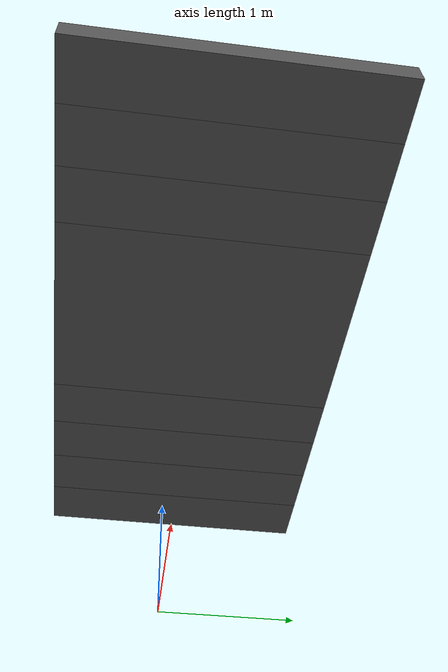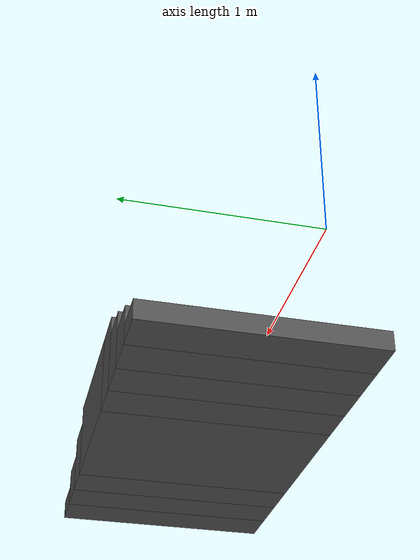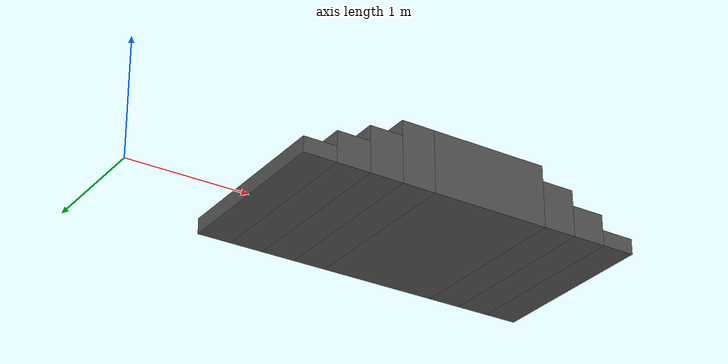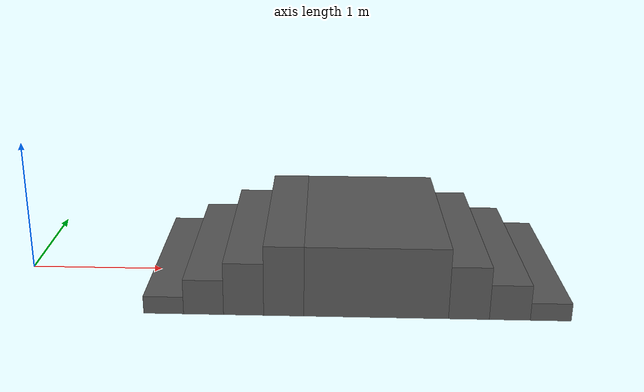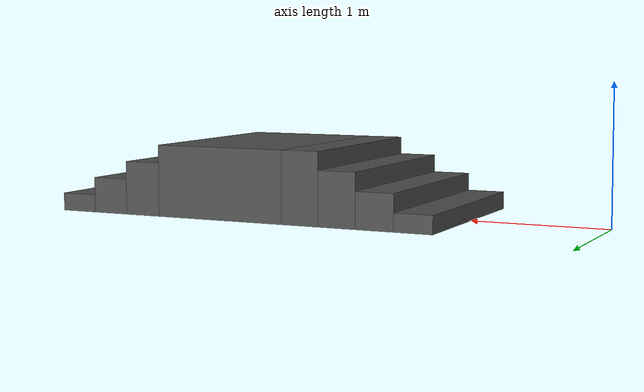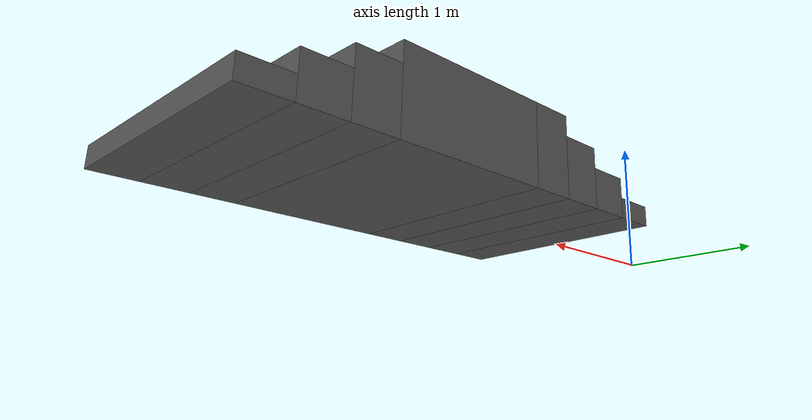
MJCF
<!--
  楼梯台阶模块 - 用于 MuJoCo 仿真场景
  结构：4 级上行台阶 → 1m 平台 → 4 级下行台阶（对称）
  台阶尺寸：每级 0.28m(深) × 1.5m(宽) × 0.13m(高)
  平台尺寸：1.0m(深) × 1.5m(宽)，顶面 z=0.52m
  总长：4×0.28 + 1.0 + 4×0.28 = 3.24m
  碰撞体：实心填充（从地面到台阶顶面）
-->
<mujoco>
  <asset>
    <texture type="2d" name="stairs_tex" builtin="checker"
             rgb1="0.4 0.4 0.4" rgb2="0.25 0.25 0.25"
             width="300" height="300" mark="edge" markrgb="0.5 0.5 0.5"/>
    <material name="stairs_mat" texture="stairs_tex"
              texuniform="true" texrepeat="2 2" reflectance="0.1"/>
  </asset>

  <worldbody>
    <body name="stairs" pos="1.0 0 0">

      <!-- ===== 上行4级 ===== -->
      <!-- 第1级：x=0.00~0.28，顶面z=0.130m -->
      <geom name="step_up_1" type="box"
            size="0.14 0.75 0.065"
            pos="0.14 0 0.065"
            material="stairs_mat" friction="1 0.1 0.1"
            contype="1" conaffinity="1" condim="3"
            solref="0.005 1" solimp="0.9 0.95 0.001"/>

      <!-- 第2级：x=0.28~0.56，顶面z=0.260m -->
      <geom name="step_up_2" type="box"
            size="0.14 0.75 0.130"
            pos="0.42 0 0.130"
            material="stairs_mat" friction="1 0.1 0.1"
            contype="1" conaffinity="1" condim="3"
            solref="0.005 1" solimp="0.9 0.95 0.001"/>

      <!-- 第3级：x=0.56~0.84，顶面z=0.390m -->
      <geom name="step_up_3" type="box"
            size="0.14 0.75 0.195"
            pos="0.70 0 0.195"
            material="stairs_mat" friction="1 0.1 0.1"
            contype="1" conaffinity="1" condim="3"
            solref="0.005 1" solimp="0.9 0.95 0.001"/>

      <!-- 第4级：x=0.84~1.12，顶面z=0.520m -->
      <geom name="step_up_4" type="box"
            size="0.14 0.75 0.260"
            pos="0.98 0 0.260"
            material="stairs_mat" friction="1 0.1 0.1"
            contype="1" conaffinity="1" condim="3"
            solref="0.005 1" solimp="0.9 0.95 0.001"/>

      <!-- ===== 平台 ===== -->
      <!-- x范围：1.12~2.12，长1.0m，x中心=1.62，顶面z=0.520m -->
      <geom name="platform" type="box"
            size="0.50 0.75 0.260"
            pos="1.62 0 0.260"
            material="stairs_mat" friction="1 0.1 0.1"
            contype="1" conaffinity="1" condim="3"
            solref="0.005 1" solimp="0.9 0.95 0.001"/>

      <!-- ===== 下行4级 ===== -->
      <!-- 第1级：x=2.12~2.40，顶面z=0.390m -->
      <geom name="step_dn_1" type="box"
            size="0.14 0.75 0.195"
            pos="2.26 0 0.195"
            material="stairs_mat" friction="1 0.1 0.1"
            contype="1" conaffinity="1" condim="3"
            solref="0.005 1" solimp="0.9 0.95 0.001"/>

      <!-- 第2级：x=2.40~2.68，顶面z=0.260m -->
      <geom name="step_dn_2" type="box"
            size="0.14 0.75 0.130"
            pos="2.54 0 0.130"
            material="stairs_mat" friction="1 0.1 0.1"
            contype="1" conaffinity="1" condim="3"
            solref="0.005 1" solimp="0.9 0.95 0.001"/>

      <!-- 第3级：x=2.68~2.96，顶面z=0.130m -->
      <geom name="step_dn_3" type="box"
            size="0.14 0.75 0.065"
            pos="2.82 0 0.065"
            material="stairs_mat" friction="1 0.1 0.1"
            contype="1" conaffinity="1" condim="3"
            solref="0.005 1" solimp="0.9 0.95 0.001"/>

      <!-- 第4步落地面z=0，无需geom -->
      <!-- 落地点局部x=3.10，世界坐标x=4.10（body pos=1.0） -->

    </body>
  </worldbody>
</mujoco>
